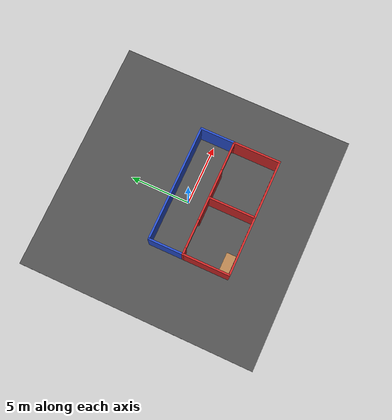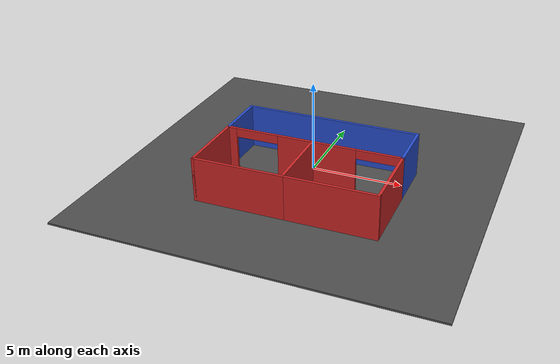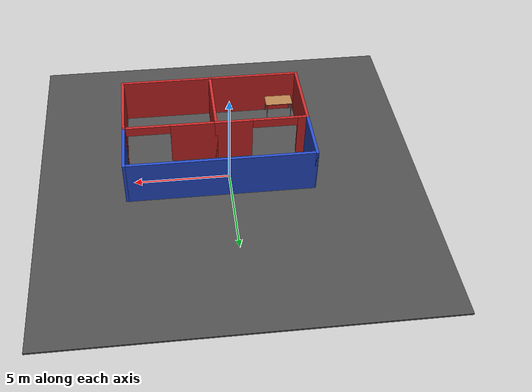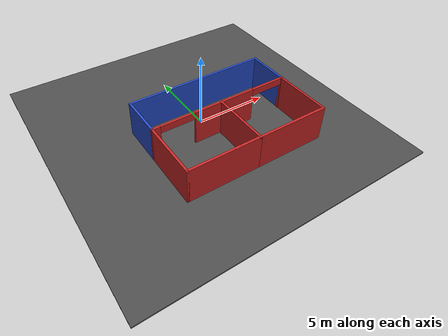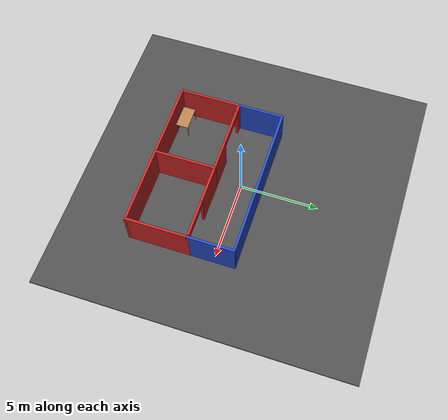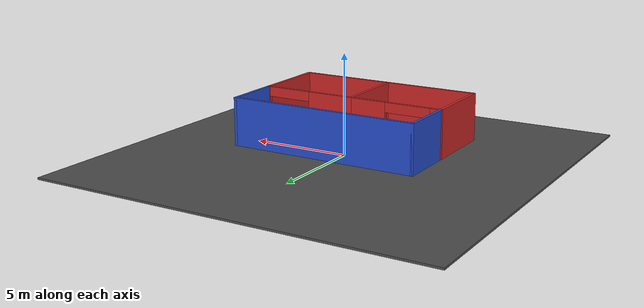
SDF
<sdf version="1.6">
 <world name="default">
  <scene><ambient>0.5 0.5 0.5 1</ambient><background>0.5 0.5 0.5 1</background><shadows>0</shadows></scene>
  <physics name="default_physics" default="0" type="ode">
   <ode>
    <solver>
     <type>quick</type>
     <iters>10</iters>
     <sor>1.3</sor>
     <use_dynamic_moi_rescaling>0</use_dynamic_moi_rescaling>
    </solver>
    <constraints>
     <cfm>0</cfm>
     <erp>0.2</erp>
     <contact_max_correcting_vel>100</contact_max_correcting_vel>
     <contact_surface_layer>0.001</contact_surface_layer>
    </constraints>
   </ode>
   <real_time_update_rate>1000</real_time_update_rate>
   <max_step_size>0.001</max_step_size>
   <real_time_factor>1</real_time_factor>
  </physics>
  <light name="directional_light_1" type="directional">
   <cast_shadows>0</cast_shadows>
   <pose>0 0 30 0.1 0.1 0</pose>
   <diffuse>1 1 1 1</diffuse>
   <specular>0.1 0.1 0.1 1</specular>
   <attenuation><range>300</range></attenuation>
   <direction>0.1 0.1 -1</direction>
  </light>
  <model name="plane_model">
   <static>1</static>
   <link name="plane_model_link">
    <collision name="plane_model_collision">
     <geometry><plane><normal>0 0 1</normal><size>1 1</size></plane></geometry>
     <surface>
      <friction><ode><mu>10</mu><mu2>10</mu2><fdir1>0 0 0</fdir1><slip1>0</slip1><slip2>0</slip2></ode></friction>
      <bounce><restitution_coefficient>0</restitution_coefficient><threshold>1e+06</threshold></bounce>
      <contact>
       <ode>
        <soft_cfm>0</soft_cfm>
        <soft_erp>0.2</soft_erp>
        <kp>1e+10</kp>
        <kd>1</kd>
        <max_vel>100</max_vel>
        <min_depth>0.0001</min_depth>
       </ode>
      </contact>
     </surface>
    </collision>
    <velocity_decay><linear>0</linear><angular>0</angular></velocity_decay>
   </link>
  </model>
  <model name="asphalt_plane">
   <static>1</static>
   <link name="link">
    <collision name="collision"><geometry><box><size>20 20 0.1</size></box></geometry></collision>
    <visual name="visual">
     <cast_shadows>0</cast_shadows>
     <geometry><box><size>20 20 0.1</size></box></geometry>
     <material>
      <script>
       <uri>model://asphalt_plane/materials/scripts</uri>
       <uri>model://asphalt_plane/materials/textures</uri>
       <name>vrc/asphalt</name>
      </script>
     </material>
    </visual>
    <velocity_decay><linear>0</linear><angular>0</angular></velocity_decay>
   </link>
   <pose>-0.010451 0.055967 0 0 -0 0</pose>
  </model>
  <spherical_coordinates>
   <surface_model>EARTH_WGS84</surface_model>
   <latitude_deg>0</latitude_deg>
   <longitude_deg>0</longitude_deg>
   <elevation>0</elevation>
   <heading_deg>0</heading_deg>
  </spherical_coordinates>
  <gravity>0 0 -9.81</gravity>
  <magnetic_field>6e-06 2.3e-05 -4.2e-05</magnetic_field>
  <atmosphere type="adiabatic"/>
  <model name="ball_bearing">
   <link name="link">
    <pose>0 0 0.003 0 -0 0</pose>
    <inertial>
     <mass>0.0011</mass>
     <inertia>
      <ixx>3.96e-09</ixx>
      <ixy>0</ixy>
      <ixz>0</ixz>
      <iyy>3.96e-09</iyy>
      <iyz>0</iyz>
      <izz>3.96e-09</izz>
     </inertia>
    </inertial>
    <collision name="collision">
     <geometry><sphere><radius>0.003</radius></sphere></geometry>
     <surface>
      <contact>
       <poissons_ratio>0.305</poissons_ratio>
       <elastic_modulus>2e+11</elastic_modulus>
       <ode><kp>100000</kp><kd>100</kd><max_vel>100</max_vel><min_depth>0.001</min_depth></ode>
      </contact>
      <friction>
       <torsional>
        <coefficient>1</coefficient>
        <use_patch_radius>0</use_patch_radius>
        <surface_radius>0.01</surface_radius>
       </torsional>
      </friction>
     </surface>
    </collision>
    <visual name="visual">
     <geometry><sphere><radius>0.003</radius></sphere></geometry>
     <material>
      <script><uri>file://media/materials/scripts/gazebo.material</uri><name>Gazebo/Grey</name></script>
     </material>
    </visual>
    <velocity_decay><linear>0</linear><angular>0.005</angular></velocity_decay>
   </link>
   <pose>3.20564 6.57238 0.049 0 -0 0</pose>
  </model>
  <model name="SimpleEnvironment">
   <pose>0.53 -2.02 0 0 -0 0</pose>
   <link name="Wall_0">
    <collision name="Wall_0_Collision">
     <geometry><box><size>4 0.15 2.5</size></box></geometry>
     <pose>0 0 1.25 0 -0 0</pose>
    </collision>
    <visual name="Wall_0_Visual">
     <pose>0 0 1.25 0 -0 0</pose>
     <geometry><box><size>4 0.15 2.5</size></box></geometry>
     <material>
      <script><uri>file://media/materials/scripts/gazebo.material</uri><name>Gazebo/red</name></script>
      <ambient>1 0 0 1</ambient>
     </material>
     <meta><layer>0</layer></meta>
    </visual>
    <pose>-4.85 -1.425 0 0 0 -1.5708</pose>
   </link>
   <link name="Wall_1">
    <collision name="Wall_1_Collision">
     <geometry><box><size>5 0.15 2.5</size></box></geometry>
     <pose>0 0 1.25 0 -0 0</pose>
    </collision>
    <visual name="Wall_1_Visual">
     <pose>0 0 1.25 0 -0 0</pose>
     <geometry><box><size>5 0.15 2.5</size></box></geometry>
     <material>
      <script><uri>file://media/materials/scripts/gazebo.material</uri><name>Gazebo/red</name></script>
      <ambient>1 0 0 1</ambient>
     </material>
     <meta><layer>0</layer></meta>
    </visual>
    <pose>-2.425 -3.35 0 0 -0 0</pose>
   </link>
   <link name="Wall_11">
    <collision name="Wall_11_Collision">
     <geometry><box><size>3 0.15 2.5</size></box></geometry>
     <pose>0 0 1.25 0 -0 0</pose>
    </collision>
    <visual name="Wall_11_Visual">
     <pose>0 0 1.25 0 -0 0</pose>
     <geometry><box><size>3 0.15 2.5</size></box></geometry>
     <material>
      <script><uri>file://media/materials/scripts/gazebo.material</uri><name>Gazebo/blue</name></script>
      <ambient>0 0 1 1</ambient>
     </material>
     <meta><layer>0</layer></meta>
    </visual>
    <pose>-4.85 1.925 0 0 -0 1.5708</pose>
   </link>
   <link name="Wall_12">
    <collision name="Wall_12_Collision">
     <geometry><box><size>9.75 0.15 2.5</size></box></geometry>
     <pose>0 0 1.25 0 -0 0</pose>
    </collision>
    <visual name="Wall_12_Visual">
     <pose>0 0 1.25 0 -0 0</pose>
     <geometry><box><size>9.75 0.15 2.5</size></box></geometry>
     <material>
      <script><uri>file://media/materials/scripts/gazebo.material</uri><name>Gazebo/blue</name></script>
      <ambient>0 0 1 1</ambient>
     </material>
     <meta><layer>0</layer></meta>
    </visual>
    <pose>-0.05 3.35 0 0 -0 0</pose>
   </link>
   <link name="Wall_15">
    <collision name="Wall_15_Collision">
     <geometry><box><size>3 0.15 2.5</size></box></geometry>
     <pose>0 0 1.25 0 -0 0</pose>
    </collision>
    <visual name="Wall_15_Visual">
     <pose>0 0 1.25 0 -0 0</pose>
     <geometry><box><size>3 0.15 2.5</size></box></geometry>
     <material>
      <script><uri>file://media/materials/scripts/gazebo.material</uri><name>Gazebo/blue</name></script>
      <ambient>0 0 1 1</ambient>
     </material>
     <meta><layer>0</layer></meta>
    </visual>
    <pose>4.85 1.925 0 0 -0 1.5708</pose>
   </link>
   <link name="Wall_2">
    <collision name="Wall_2_Collision">
     <geometry><box><size>4 0.15 2.5</size></box></geometry>
     <pose>0 0 1.25 0 -0 0</pose>
    </collision>
    <visual name="Wall_2_Visual">
     <pose>0 0 1.25 0 -0 0</pose>
     <geometry><box><size>4 0.15 2.5</size></box></geometry>
     <material>
      <script><uri>file://media/materials/scripts/gazebo.material</uri><name>Gazebo/red</name></script>
      <ambient>1 0 0 1</ambient>
     </material>
     <meta><layer>0</layer></meta>
    </visual>
    <pose>0 -1.425 0 0 -0 1.5708</pose>
   </link>
   <link name="Wall_3">
    <pose>2.425 0.5 0 0 -0 0</pose>
    <visual name="Wall_3_Visual_0">
     <pose>-1.25851 0 1.25 0 -0 0</pose>
     <geometry><box><size>2.48299 0.15 2.5</size></box></geometry>
     <material>
      <script><uri>file://media/materials/scripts/gazebo.material</uri><name>Gazebo/red</name></script>
      <ambient>1 0 0 1</ambient>
     </material>
     <meta><layer>0</layer></meta>
    </visual>
    <collision name="Wall_3_Collision_0">
     <geometry><box><size>2.48299 0.15 2.5</size></box></geometry>
     <pose>-1.25851 0 1.25 0 -0 0</pose>
    </collision>
    <visual name="Wall_3_Visual_1">
     <pose>2.40605 0 1.25 0 -0 0</pose>
     <geometry><box><size>0.187904 0.15 2.5</size></box></geometry>
     <material>
      <script><uri>file://media/materials/scripts/gazebo.material</uri><name>Gazebo/red</name></script>
      <ambient>1 0 0 1</ambient>
     </material>
     <meta><layer>0</layer></meta>
    </visual>
    <collision name="Wall_3_Collision_1">
     <geometry><box><size>0.187904 0.15 2.5</size></box></geometry>
     <pose>2.40605 0 1.25 0 -0 0</pose>
    </collision>
    <visual name="Wall_3_Visual_2">
     <pose>1.14754 0 2.25 0 -0 0</pose>
     <geometry><box><size>2.32911 0.15 0.5</size></box></geometry>
     <material>
      <script><uri>file://media/materials/scripts/gazebo.material</uri><name>Gazebo/red</name></script>
      <ambient>1 0 0 1</ambient>
     </material>
     <meta><layer>0</layer></meta>
    </visual>
    <collision name="Wall_3_Collision_2">
     <geometry><box><size>2.32911 0.15 0.5</size></box></geometry>
     <pose>1.14754 0 2.25 0 -0 0</pose>
    </collision>
   </link>
   <link name="Wall_4">
    <collision name="Wall_4_Collision">
     <geometry><box><size>4 0.15 2.5</size></box></geometry>
     <pose>0 0 1.25 0 -0 0</pose>
    </collision>
    <visual name="Wall_4_Visual">
     <pose>0 0 1.25 0 -0 0</pose>
     <geometry><box><size>4 0.15 2.5</size></box></geometry>
     <material>
      <script><uri>file://media/materials/scripts/gazebo.material</uri><name>Gazebo/red</name></script>
      <ambient>1 0 0 1</ambient>
     </material>
     <meta><layer>0</layer></meta>
    </visual>
    <pose>4.85 -1.425 0 0 0 -1.5708</pose>
   </link>
   <link name="Wall_5">
    <collision name="Wall_5_Collision">
     <geometry><box><size>5 0.15 2.5</size></box></geometry>
     <pose>0 0 1.25 0 -0 0</pose>
    </collision>
    <visual name="Wall_5_Visual">
     <pose>0 0 1.25 0 -0 0</pose>
     <geometry><box><size>5 0.15 2.5</size></box></geometry>
     <material>
      <script><uri>file://media/materials/scripts/gazebo.material</uri><name>Gazebo/red</name></script>
      <ambient>1 0 0 1</ambient>
     </material>
     <meta><layer>0</layer></meta>
    </visual>
    <pose>2.425 -3.35 0 0 -0 3.14159</pose>
   </link>
   <link name="Wall_7">
    <pose>-2.425 0.5 0 0 -0 0</pose>
    <visual name="Wall_7_Visual_0">
     <pose>-2.2015 0 1.25 0 -0 0</pose>
     <geometry><box><size>0.596992 0.15 2.5</size></box></geometry>
     <material>
      <script><uri>file://media/materials/scripts/gazebo.material</uri><name>Gazebo/red</name></script>
      <ambient>1 0 0 1</ambient>
     </material>
     <meta><layer>0</layer></meta>
    </visual>
    <collision name="Wall_7_Collision_0">
     <geometry><box><size>0.596992 0.15 2.5</size></box></geometry>
     <pose>-2.2015 0 1.25 0 -0 0</pose>
    </collision>
    <visual name="Wall_7_Visual_1">
     <pose>1.4933 0 1.25 0 -0 0</pose>
     <geometry><box><size>2.01341 0.15 2.5</size></box></geometry>
     <material>
      <script><uri>file://media/materials/scripts/gazebo.material</uri><name>Gazebo/red</name></script>
      <ambient>1 0 0 1</ambient>
     </material>
     <meta><layer>0</layer></meta>
    </visual>
    <collision name="Wall_7_Collision_1">
     <geometry><box><size>2.01341 0.15 2.5</size></box></geometry>
     <pose>1.4933 0 1.25 0 -0 0</pose>
    </collision>
    <visual name="Wall_7_Visual_2">
     <pose>-0.708207 0 2.25 0 -0 0</pose>
     <geometry><box><size>2.3896 0.15 0.5</size></box></geometry>
     <material>
      <script><uri>file://media/materials/scripts/gazebo.material</uri><name>Gazebo/red</name></script>
      <ambient>1 0 0 1</ambient>
     </material>
     <meta><layer>0</layer></meta>
    </visual>
    <collision name="Wall_7_Collision_2">
     <geometry><box><size>2.3896 0.15 0.5</size></box></geometry>
     <pose>-0.708207 0 2.25 0 -0 0</pose>
    </collision>
   </link>
   <static>1</static>
  </model>
  <model name="table">
   <static>1</static>
   <link name="link">
    <collision name="surface">
     <pose>0 0 1 0 -0 0</pose>
     <geometry><box><size>1.5 0.8 0.03</size></box></geometry>
     <surface><friction><ode><mu>0.6</mu><mu2>0.6</mu2></ode></friction></surface>
    </collision>
    <visual name="visual1">
     <pose>0 0 1 0 -0 0</pose>
     <geometry><box><size>1.5 0.8 0.03</size></box></geometry>
     <material>
      <script><uri>file://media/materials/scripts/gazebo.material</uri><name>Gazebo/Wood</name></script>
     </material>
    </visual>
    <collision name="front_left_leg">
     <pose>0.68 0.38 0.5 0 -0 0</pose>
     <geometry><cylinder><radius>0.02</radius><length>1</length></cylinder></geometry>
    </collision>
    <visual name="front_left_leg">
     <pose>0.68 0.38 0.5 0 -0 0</pose>
     <geometry><cylinder><radius>0.02</radius><length>1</length></cylinder></geometry>
     <material>
      <script><uri>file://media/materials/scripts/gazebo.material</uri><name>Gazebo/Grey</name></script>
     </material>
    </visual>
    <collision name="front_right_leg">
     <pose>0.68 -0.38 0.5 0 -0 0</pose>
     <geometry><cylinder><radius>0.02</radius><length>1</length></cylinder></geometry>
    </collision>
    <visual name="front_right_leg">
     <pose>0.68 -0.38 0.5 0 -0 0</pose>
     <geometry><cylinder><radius>0.02</radius><length>1</length></cylinder></geometry>
     <material>
      <script><uri>file://media/materials/scripts/gazebo.material</uri><name>Gazebo/Grey</name></script>
     </material>
    </visual>
    <collision name="back_right_leg">
     <pose>-0.68 -0.38 0.5 0 -0 0</pose>
     <geometry><cylinder><radius>0.02</radius><length>1</length></cylinder></geometry>
    </collision>
    <visual name="back_right_leg">
     <pose>-0.68 -0.38 0.5 0 -0 0</pose>
     <geometry><cylinder><radius>0.02</radius><length>1</length></cylinder></geometry>
     <material>
      <script><uri>file://media/materials/scripts/gazebo.material</uri><name>Gazebo/Grey</name></script>
     </material>
    </visual>
    <collision name="back_left_leg">
     <pose>-0.68 0.38 0.5 0 -0 0</pose>
     <geometry><cylinder><radius>0.02</radius><length>1</length></cylinder></geometry>
    </collision>
    <visual name="back_left_leg">
     <pose>-0.68 0.38 0.5 0 -0 0</pose>
     <geometry><cylinder><radius>0.02</radius><length>1</length></cylinder></geometry>
     <material>
      <script><uri>file://media/materials/scripts/gazebo.material</uri><name>Gazebo/Grey</name></script>
     </material>
    </visual>
   </link>
   <pose>-3.32973 -4.88019 0 0 -0 0</pose>
  </model>
 </world>
</sdf>
